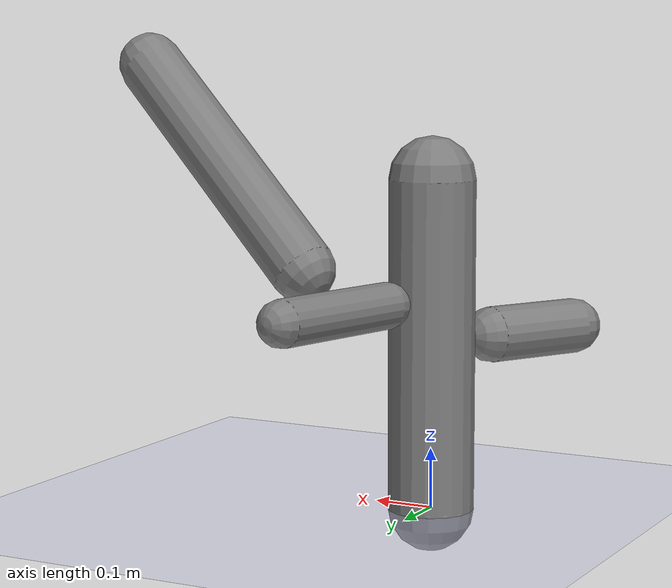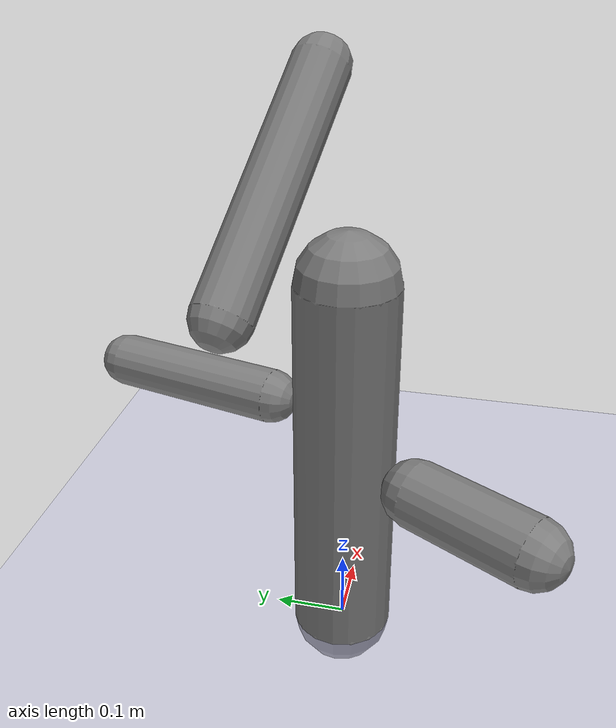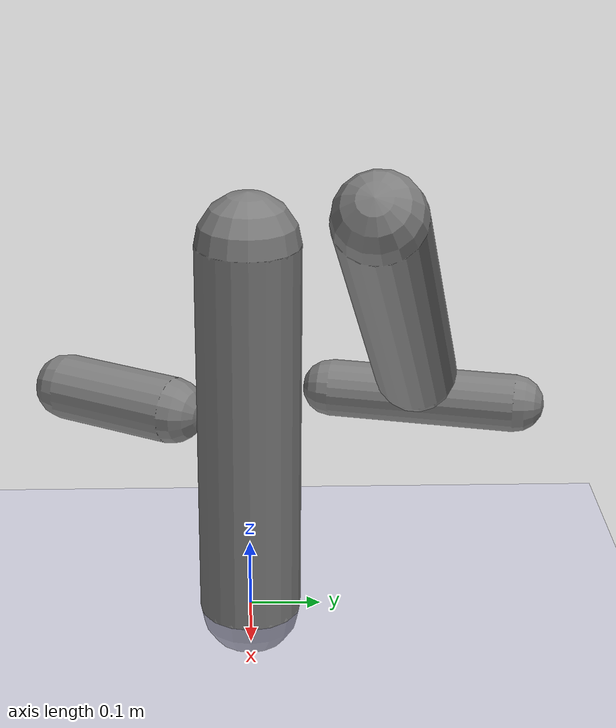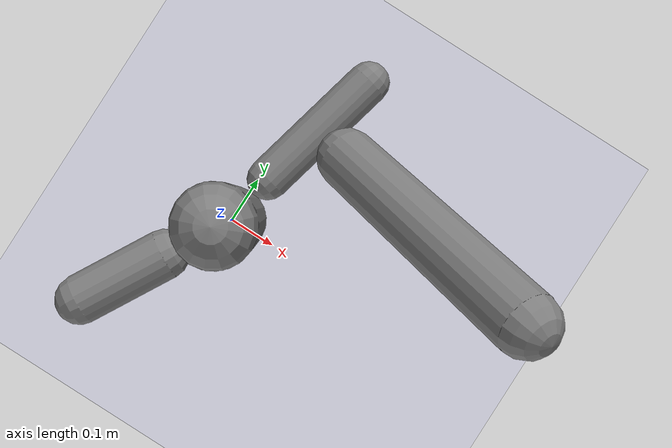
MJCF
<?xml version='1.0' encoding='UTF-8'?>
<mujoco model="robot_model">
  <worldbody>
    <light name="light" pos="0 -3 10" dir="0 0.5 -1" diffuse=".8 .8 .8" specular="0.1 0.1 0.1"/>
    <geom name="floor" type="plane" size="10.0 10.0 0.1" pos="0 0 0" rgba="0.8 0.8 1 1" contype="2" conaffinity="1"/>
    <body name="limb0" pos="0 0 0">
      <geom name="limb0_geom" type="capsule" fromto="0 0 0 0 0 0.5457704690419771" size="0.07178082930646924" density="701.8280259447331" contype="1" conaffinity="2"/>
      <site type="sphere" size="0.01" name="limb0_site0" pos="0.026737034656735763 0.11052934666610192 0.351585618867732" quat="0.7071067811865476 -0.6872842340416209 0.16625396728446054 0.0"/>
      <site type="sphere" size="0.01" name="limb0_site1" pos="-0.060193875694894726 -0.10706133732710098 0.2799520009596817" quat="0.7071067811865476 0.6163661522321393 -0.34654403238628584 0.0"/>
      <freejoint name="limb0_root"/>
      <body name="limb1" pos="0.026737034656735763 0.11052934666610192 0.351585618867732" quat="0.7071067811865476 -0.6872842340416209 0.16625396728446054 0.0">
        <geom name="limb1_geom" type="capsule" fromto="0 0 0 0 0 0.24557168831043172" size="0.03793638793292167" density="1033.1833302746434" contype="1" conaffinity="2"/>
        <site type="sphere" size="0.01" name="limb1_site0" pos="0.05241673832827575 -0.07841055298624999 0.12171079820927166" quat="0.7071067811865476 0.5878530016335616 0.3929743610853153 0.0"/>
        <body name="limb2" pos="0.05241673832827575 -0.07841055298624999 0.12171079820927166" quat="0.7071067811865476 0.5878530016335616 0.3929743610853153 0.0">
          <geom name="limb2_geom" type="capsule" fromto="0 0 0 0 0 0.4629995693504536" size="0.0523807858827968" density="1002.1180157746932" contype="1" conaffinity="2"/>
          <joint name="joint_limb1_limb2_0" type="hinge" axis="0 1 0" range="-86.59574069882109 86.59574069882109" damping="5.0"/>
        </body>
        <joint name="joint_limb0_limb1_0" type="hinge" axis="0 0 1" range="-58.58706384791232 58.58706384791232" damping="5.0"/>
      </body>
      <body name="limb3" pos="-0.060193875694894726 -0.10706133732710098 0.2799520009596817" quat="0.7071067811865476 0.6163661522321393 -0.34654403238628584 0.0">
        <geom name="limb3_geom" type="capsule" fromto="0 0 0 0 0 0.1756841044802058" size="0.04704193984257633" density="984.254461993807" contype="1" conaffinity="2"/>
        <joint name="joint_limb0_limb3_0" type="hinge" axis="0 0 1" range="-48.30882915157748 48.30882915157748" damping="5.0"/>
      </body>
    </body>
  </worldbody>
  <actuator>
    <position name="position_actuator_joint_limb0_limb1_0" joint="joint_limb0_limb1_0" gear="1.9636293553530957" inheritrange="1" forcerange="-6.917133371717257 6.917133371717257" forcelimited="true" kp="100.0"/>
    <position name="position_actuator_joint_limb1_limb2_0" joint="joint_limb1_limb2_0" gear="1.6510788759733253" inheritrange="1" forcerange="-23.013363086378703 23.013363086378703" forcelimited="true" kp="100.0"/>
    <position name="position_actuator_joint_limb0_limb3_0" joint="joint_limb0_limb3_0" gear="0.5" inheritrange="1" forcerange="-8.156731254242125 8.156731254242125" forcelimited="true" kp="100.0"/>
  </actuator>
  <contact>
    <pair geom1="limb0_geom" geom2="limb1_geom"/>
    <pair geom1="limb1_geom" geom2="limb2_geom"/>
    <pair geom1="limb0_geom" geom2="limb3_geom"/>
  </contact>
</mujoco>
